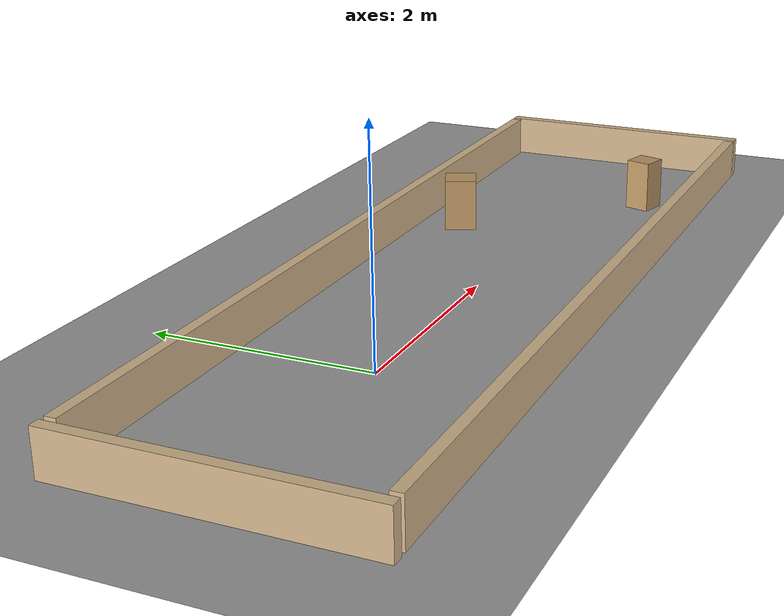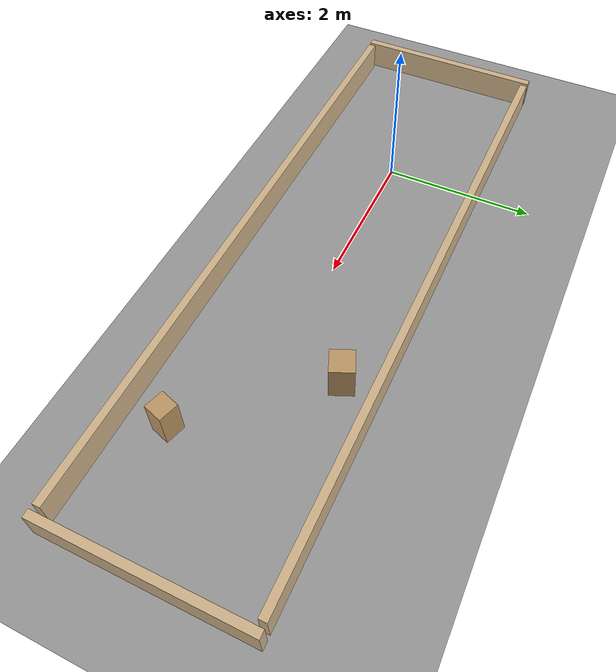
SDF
<?xml version="1.0" ?>
<sdf version="1.9">
  <world name="driftbot_corridor">
    <physics name="1ms" type="ignored">
      <max_step_size>0.001</max_step_size>
      <real_time_factor>1.0</real_time_factor>
      <real_time_update_rate>1000</real_time_update_rate>
    </physics>

    <plugin filename="gz-sim-physics-system" name="gz::sim::systems::Physics" />
    <plugin filename="gz-sim-user-commands-system" name="gz::sim::systems::UserCommands" />
    <plugin filename="gz-sim-scene-broadcaster-system" name="gz::sim::systems::SceneBroadcaster" />
    <plugin filename="gz-sim-imu-system" name="gz::sim::systems::Imu" />
    <plugin filename="gz-sim-sensors-system" name="gz::sim::systems::Sensors">
      <render_engine>ogre2</render_engine>
    </plugin>

    <light type="directional" name="sun">
      <cast_shadows>true</cast_shadows>
      <pose>0 0 10 0 0 0</pose>
      <diffuse>0.9 0.9 0.9 1</diffuse>
      <specular>0.2 0.2 0.2 1</specular>
      <attenuation>
        <range>1000</range>
        <constant>0.9</constant>
        <linear>0.01</linear>
        <quadratic>0.001</quadratic>
      </attenuation>
      <direction>-0.5 0.1 -0.9</direction>
    </light>

    <model name="ground_plane">
      <static>true</static>
      <link name="link">
        <collision name="collision">
          <geometry>
            <plane>
              <normal>0 0 1</normal>
              <size>20 20</size>
            </plane>
          </geometry>
          <surface>
            <friction>
              <ode>
                <mu>50</mu>
                <mu2>50</mu2>
              </ode>
            </friction>
          </surface>
        </collision>
        <visual name="visual">
          <geometry>
            <plane>
              <normal>0 0 1</normal>
              <size>20 20</size>
            </plane>
          </geometry>
          <material>
            <ambient>0.6 0.6 0.6 1</ambient>
            <diffuse>0.6 0.6 0.6 1</diffuse>
            <specular>0.2 0.2 0.2 1</specular>
          </material>
        </visual>
      </link>
    </model>

    <!-- ── Cardboard corridor walls (tan) ────────────────────────────────── -->
    <model name="corridor_left_wall">
      <static>true</static>
      <pose>2 1.25 0.2 0 0 0</pose>
      <link name="link">
        <collision name="collision">
          <geometry>
            <box>
              <size>8.4 0.1 0.4</size>
            </box>
          </geometry>
        </collision>
        <visual name="visual">
          <geometry>
            <box>
              <size>8.4 0.1 0.4</size>
            </box>
          </geometry>
          <material>
            <ambient>0.82 0.71 0.55 1</ambient>
            <diffuse>0.82 0.71 0.55 1</diffuse>
            <specular>0.1 0.1 0.1 1</specular>
          </material>
        </visual>
      </link>
    </model>

    <model name="corridor_right_wall">
      <static>true</static>
      <pose>2 -1.25 0.2 0 0 0</pose>
      <link name="link">
        <collision name="collision">
          <geometry>
            <box>
              <size>8.4 0.1 0.4</size>
            </box>
          </geometry>
        </collision>
        <visual name="visual">
          <geometry>
            <box>
              <size>8.4 0.1 0.4</size>
            </box>
          </geometry>
          <material>
            <ambient>0.82 0.71 0.55 1</ambient>
            <diffuse>0.82 0.71 0.55 1</diffuse>
            <specular>0.1 0.1 0.1 1</specular>
          </material>
        </visual>
      </link>
    </model>

    <model name="corridor_back_wall">
      <static>true</static>
      <pose>-2.3 0 0.2 0 0 0</pose>
      <link name="link">
        <collision name="collision">
          <geometry>
            <box>
              <size>0.1 2.6 0.4</size>
            </box>
          </geometry>
        </collision>
        <visual name="visual">
          <geometry>
            <box>
              <size>0.1 2.6 0.4</size>
            </box>
          </geometry>
          <material>
            <ambient>0.82 0.71 0.55 1</ambient>
            <diffuse>0.82 0.71 0.55 1</diffuse>
            <specular>0.1 0.1 0.1 1</specular>
          </material>
        </visual>
      </link>
    </model>

    <model name="corridor_front_wall">
      <static>true</static>
      <pose>6.3 0 0.2 0 0 0</pose>
      <link name="link">
        <collision name="collision">
          <geometry>
            <box>
              <size>0.1 2.6 0.4</size>
            </box>
          </geometry>
        </collision>
        <visual name="visual">
          <geometry>
            <box>
              <size>0.1 2.6 0.4</size>
            </box>
          </geometry>
          <material>
            <ambient>0.82 0.71 0.55 1</ambient>
            <diffuse>0.82 0.71 0.55 1</diffuse>
            <specular>0.1 0.1 0.1 1</specular>
          </material>
        </visual>
      </link>
    </model>

    <!-- Box obstacles inside the corridor (0.5 m tall: above the Jackal's
       lidar plane at ~0.30 m, below the 0.4 m corridor walls) -->
    <model name="box_left">
      <static>true</static>
      <pose>3.5 0.8 0.25 0 0 0.4</pose>
      <link name="link">
        <collision name="collision">
          <geometry>
            <box>
              <size>0.3 0.3 0.5</size>
            </box>
          </geometry>
        </collision>
        <visual name="visual">
          <geometry>
            <box>
              <size>0.3 0.3 0.5</size>
            </box>
          </geometry>
          <material>
            <ambient>0.75 0.6 0.4 1</ambient>
            <diffuse>0.75 0.6 0.4 1</diffuse>
          </material>
        </visual>
      </link>
    </model>

    <model name="box_right">
      <static>true</static>
      <pose>4.8 -0.7 0.25 0 0 -0.3</pose>
      <link name="link">
        <collision name="collision">
          <geometry>
            <box>
              <size>0.25 0.25 0.5</size>
            </box>
          </geometry>
        </collision>
        <visual name="visual">
          <geometry>
            <box>
              <size>0.25 0.25 0.5</size>
            </box>
          </geometry>
          <material>
            <ambient>0.75 0.6 0.4 1</ambient>
            <diffuse>0.75 0.6 0.4 1</diffuse>
          </material>
        </visual>
      </link>
    </model>
  </world>
</sdf>
